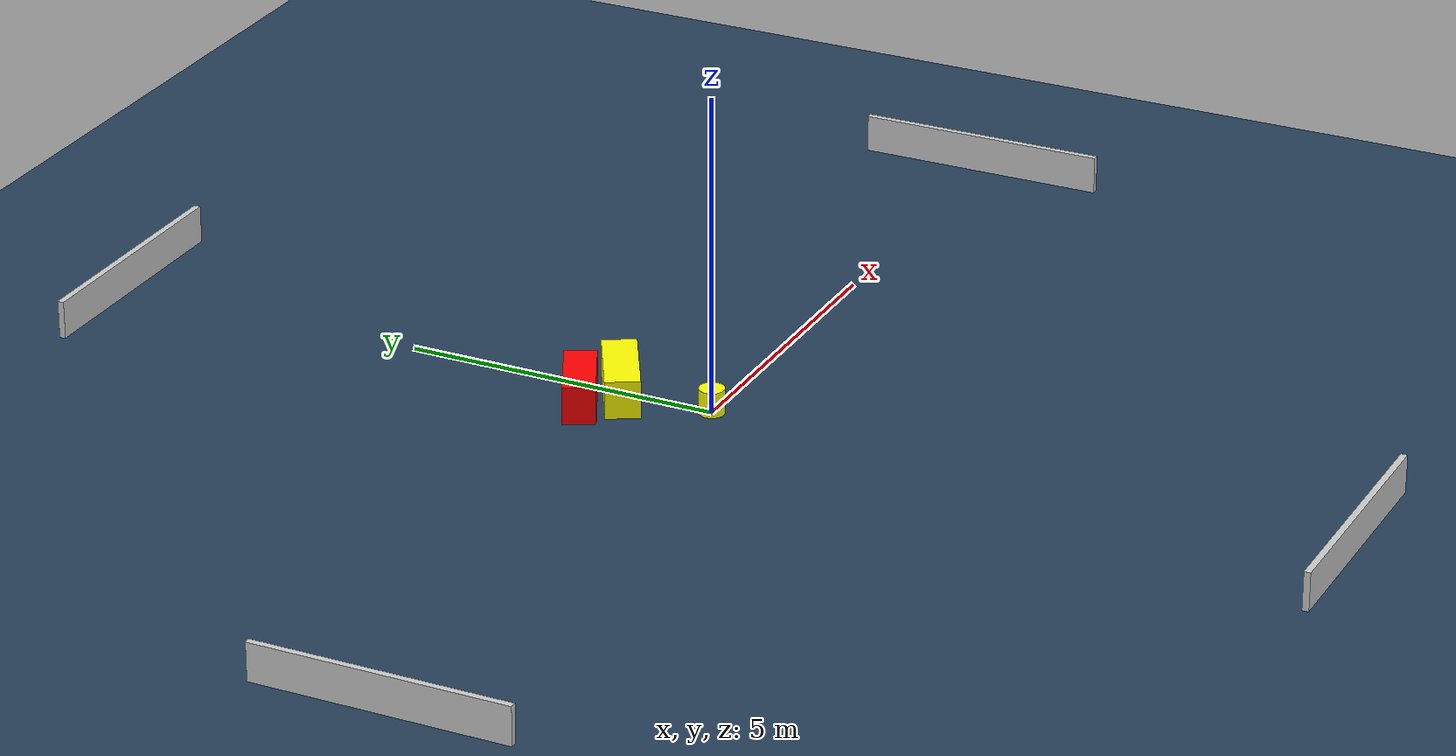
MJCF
<?xml version="1.0" ?>
<mujoco model="generated_environment">
  <option timestep="0.01" integrator="RK4" cone="elliptic"/>
  <default>
    <geom density="1"/>
  </default>
  <asset>
    <texture builtin="gradient" height="3072" name="skybox" rgb1="0.3 0.5 0.7" rgb2="0 0 0" type="skybox" width="512"/>
    <texture builtin="checker" height="300" name="groundplane" rgb1="0.2 0.3 0.4" rgb2="0.1 0.2 0.3" type="2d" width="300"/>
    <material name="groundplane" reflectance="0.2" texrepeat="5 5" texture="groundplane"/>
  </asset>
  <worldbody>
    <light dir="0 0 -1" directional="true" pos="0 0 1.5"/>
    <geom condim="3" friction="0.5 0.005 0.001" material="groundplane" name="floor" pos="0 0 0" size="0 0 0.05" type="plane"/>
    <body name="walls">
      <geom name="wall_1" condim="4" pos="-10.0 0.0 0.3" rgba="0.800000011920929 0.800000011920929 0.800000011920929 1.0" size="0.05 2.0 0.3" type="box"/>
      <geom name="wall_2" condim="4" pos="10.0 0.0 0.3" rgba="0.800000011920929 0.800000011920929 0.800000011920929 1.0" size="0.05 2.0 0.3" type="box"/>
      <geom name="wall_3" condim="4" pos="0.0 -10.0 0.3" rgba="0.800000011920929 0.800000011920929 0.800000011920929 1.0" size="2.0 0.05 0.3" type="box"/>
      <geom name="wall_4" condim="4" pos="0.0 10.0 0.3" rgba="0.800000011920929 0.800000011920929 0.800000011920929 1.0" size="2.0 0.05 0.3" type="box"/>
    </body>
    <body name="robot">
      <joint name="joint_x" type="slide" pos="0 0 0" axis="1 0 0"/>
      <joint name="joint_y" type="slide" pos="0 0 0" axis="0 1 0"/>
      <geom name="robot" type="cylinder" pos="0.0 0.0 0.2" size="0.2 0.2 0.0" mass="5.0" friction="1.0 0.005 0.0001" condim="4" rgba="1.0 1.0 0.0 1.0"/>
    </body>
    <body name="obstacle_1_movable">
      <geom name="obstacle_1_movable" condim="4" pos="-0.1219405355727625 1.4411017974449736 0.3" euler="0 0 298.8601667138471" friction="0.0 0.005 0.001" rgba="1.0 1.0 0.0 1.0" size="0.2697836129850726 0.7336310192324438 0.3" type="box" mass="0.1"/>
      <joint type="free"/>
    </body>
    <body name="obstacle_2_static">
      <geom name="obstacle_2_static" condim="4" pos="-0.6403794964124835 1.8584797254950938 0.3" euler="0 0 205.99749663407854" friction="0.0 0.005 0.001" rgba="1.0 0.0 0.0 1.0" size="0.6490491024633103 0.2498925054927154 0.3" type="box"/>
    </body>
  </worldbody>
  <actuator>
    <motor name="actuator_x" joint="joint_x" gear="1" ctrlrange="-1 1"/>
    <motor name="actuator_y" joint="joint_y" gear="1" ctrlrange="-1 1"/>
  </actuator>
</mujoco>
